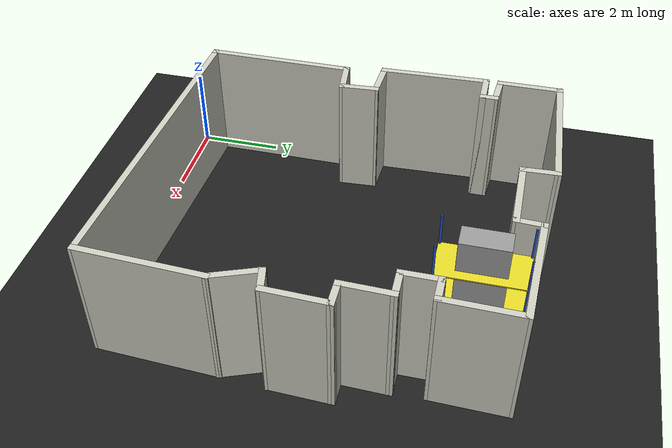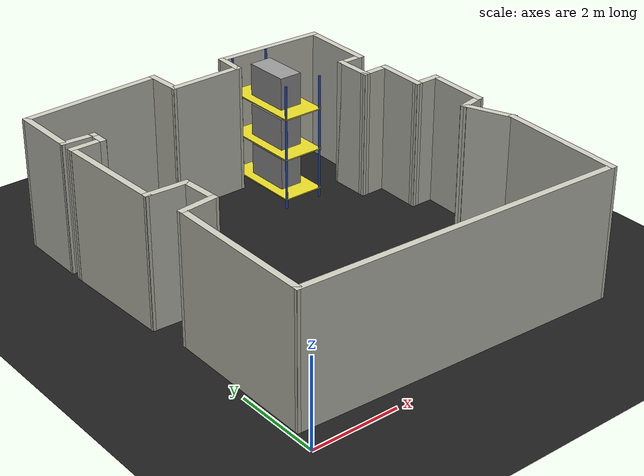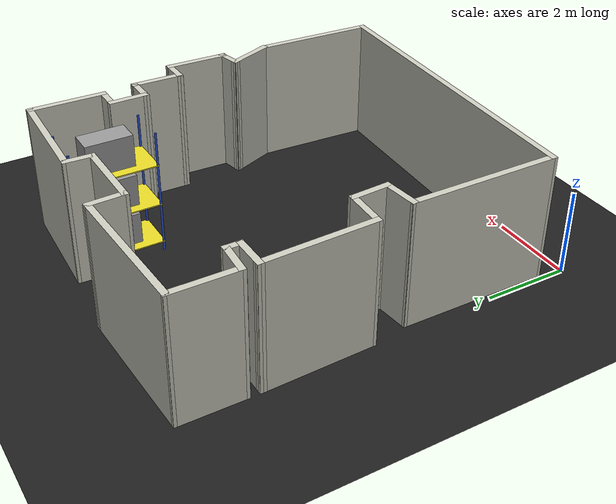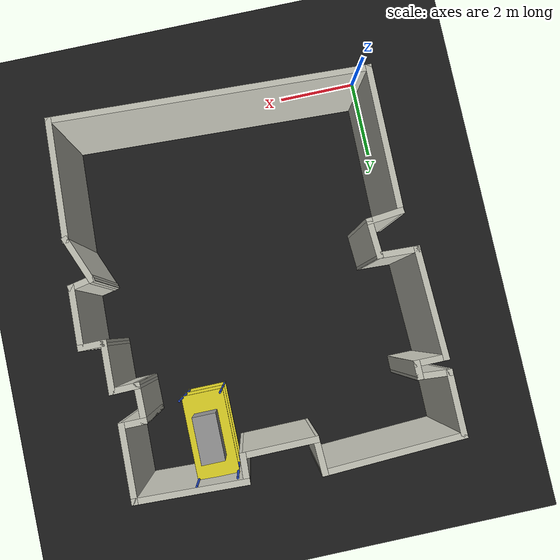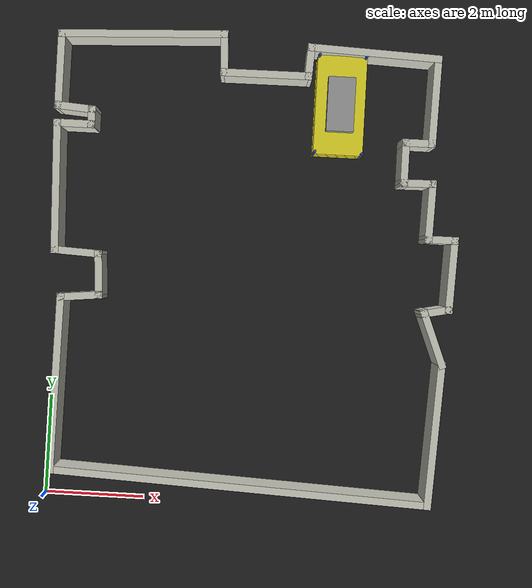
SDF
<sdf version="1.7">
    <world name="default">
        <light name="sun" type="directional">
            <cast_shadows>1</cast_shadows>
            <pose>0 0 10 0 -0 0</pose>
            <diffuse>0.8 0.8 0.8 1</diffuse>
            <specular>0.2 0.2 0.2 1</specular>
            <attenuation>
                <range>1000</range>
                <constant>0.9</constant>
                <linear>0.01</linear>
                <quadratic>0.001</quadratic>
            </attenuation>
            <direction>-0.5 0.1 -0.9</direction>
            <spot>
                <inner_angle>0</inner_angle>
                <outer_angle>0</outer_angle>
                <falloff>0</falloff>
            </spot>
        </light>
        <gravity>0 0 -9.8</gravity>
        <magnetic_field>6e-06 2.3e-05 -4.2e-05</magnetic_field>
        <atmosphere type="adiabatic" />
        <physics type="ode">
            <max_step_size>0.001</max_step_size>
            <real_time_factor>1</real_time_factor>
            <real_time_update_rate>1000</real_time_update_rate>
        </physics>
        <scene>
            <ambient>0.4 0.4 0.4 1</ambient>
            <background>0.7 0.7 0.7 1</background>
            <shadows>1</shadows>
        </scene>
        <wind />
        <spherical_coordinates>
            <surface_model>EARTH_WGS84</surface_model>
            <latitude_deg>0</latitude_deg>
            <longitude_deg>0</longitude_deg>
            <elevation>0</elevation>
            <heading_deg>0</heading_deg>
        </spherical_coordinates>
        <model name="walls-generator">
            <pose>0 0 0 0 -0 0</pose>
            <link name="Wall_11">
                <collision name="Wall_11_Collision">
                    <geometry>
                        <box>
                            <size>3.6101300553591913 0.15 3.5</size>
                            <scale>1 1 1</scale>
                        </box>
                    </geometry>
                    <pose>0 0 1.25 0 -0 0</pose>
                </collision>
                <visual name="Wall_11_Visual">
                    <pose>0 0 1.25 0 -0 0</pose>
                    <geometry>
                        <box>
                            <size>3.6101300553591913 0.15 3.5</size>
                        </box>
                        <scale>1 1 1</scale>
                    </geometry>
                    <material>
                        <script>
                            <uri>file://media/materials/scripts/gazebo.material</uri>
                            <name>Gazebo/PaintedWall</name>
                        </script>
                        <ambient>1 1 1 1</ambient>
                    </material>
                    <meta>
                        <layer>0</layer>
                    </meta>
                </visual>
                <pose>0.195 2.3400000000000003 0 0 0 1.5621260238311112</pose>
            </link>
            <link name="Wall_12">
                <collision name="Wall_12_Collision">
                    <geometry>
                        <box>
                            <size>0.914198926981712 0.15 3.5</size>
                            <scale>1 1 1</scale>
                        </box>
                    </geometry>
                    <pose>0 0 1.25 0 -0 0</pose>
                </collision>
                <visual name="Wall_12_Visual">
                    <pose>0 0 1.25 0 -0 0</pose>
                    <geometry>
                        <box>
                            <size>0.914198926981712 0.15 3.5</size>
                        </box>
                        <scale>1 1 1</scale>
                    </geometry>
                    <material>
                        <script>
                            <uri>file://media/materials/scripts/gazebo.material</uri>
                            <name>Gazebo/PaintedWall</name>
                        </script>
                        <ambient>1 1 1 1</ambient>
                    </material>
                    <meta>
                        <layer>0</layer>
                    </meta>
                </visual>
                <pose>0.59 4.11 0 0 0 0.10487693873023399</pose>
            </link>
            <link name="Wall_13">
                <collision name="Wall_13_Collision">
                    <geometry>
                        <box>
                            <size>0.9715229759416343 0.15 3.5</size>
                            <scale>1 1 1</scale>
                        </box>
                    </geometry>
                    <pose>0 0 1.25 0 -0 0</pose>
                </collision>
                <visual name="Wall_13_Visual">
                    <pose>0 0 1.25 0 -0 0</pose>
                    <geometry>
                        <box>
                            <size>0.9715229759416343 0.15 3.5</size>
                        </box>
                        <scale>1 1 1</scale>
                    </geometry>
                    <material>
                        <script>
                            <uri>file://media/materials/scripts/gazebo.material</uri>
                            <name>Gazebo/PaintedWall</name>
                        </script>
                        <ambient>1 1 1 1</ambient>
                    </material>
                    <meta>
                        <layer>0</layer>
                    </meta>
                </visual>
                <pose>0.9450000000000001 4.5600000000000005 0 0 0 1.6316965350728847</pose>
            </link>
            <link name="Wall_14">
                <collision name="Wall_14_Collision">
                    <geometry>
                        <box>
                            <size>1.0309086218218095 0.15 3.5</size>
                            <scale>1 1 1</scale>
                        </box>
                    </geometry>
                    <pose>0 0 1.25 0 -0 0</pose>
                </collision>
                <visual name="Wall_14_Visual">
                    <pose>0 0 1.25 0 -0 0</pose>
                    <geometry>
                        <box>
                            <size>1.0309086218218095 0.15 3.5</size>
                        </box>
                        <scale>1 1 1</scale>
                    </geometry>
                    <material>
                        <script>
                            <uri>file://media/materials/scripts/gazebo.material</uri>
                            <name>Gazebo/PaintedWall</name>
                        </script>
                        <ambient>1 1 1 1</ambient>
                    </material>
                    <meta>
                        <layer>0</layer>
                    </meta>
                </visual>
                <pose>0.48000000000000004 4.99 0 0 0 3.096169374168216</pose>
            </link>
            <link name="Wall_15">
                <collision name="Wall_15_Collision">
                    <geometry>
                        <box>
                            <size>2.6912595302329905 0.15 3.5</size>
                            <scale>1 1 1</scale>
                        </box>
                    </geometry>
                    <pose>0 0 1.25 0 -0 0</pose>
                </collision>
                <visual name="Wall_15_Visual">
                    <pose>0 0 1.25 0 -0 0</pose>
                    <geometry>
                        <box>
                            <size>2.6912595302329905 0.15 3.5</size>
                        </box>
                        <scale>1 1 1</scale>
                    </geometry>
                    <material>
                        <script>
                            <uri>file://media/materials/scripts/gazebo.material</uri>
                            <name>Gazebo/PaintedWall</name>
                        </script>
                        <ambient>1 1 1 1</ambient>
                    </material>
                    <meta>
                        <layer>0</layer>
                    </meta>
                </visual>
                <pose>0 6.279999999999999 0 0 0 1.6022819812624947</pose>
            </link>
            <link name="Wall_16">
                <collision name="Wall_16_Collision">
                    <geometry>
                        <box>
                            <size>0.8300000000000001 0.15 3.5</size>
                            <scale>1 1 1</scale>
                        </box>
                    </geometry>
                    <pose>0 0 1.25 0 -0 0</pose>
                </collision>
                <visual name="Wall_16_Visual">
                    <pose>0 0 1.25 0 -0 0</pose>
                    <geometry>
                        <box>
                            <size>0.8300000000000001 0.15 3.5</size>
                        </box>
                        <scale>1 1 1</scale>
                    </geometry>
                    <material>
                        <script>
                            <uri>file://media/materials/scripts/gazebo.material</uri>
                            <name>Gazebo/PaintedWall</name>
                        </script>
                        <ambient>1 1 1 1</ambient>
                    </material>
                    <meta>
                        <layer>0</layer>
                    </meta>
                </visual>
                <pose>0.3 7.55 0 0 0 0</pose>
            </link>
            <link name="Wall_17">
                <collision name="Wall_17_Collision">
                    <geometry>
                        <box>
                            <size>0.45000000000000073 0.15 3.5</size>
                            <scale>1 1 1</scale>
                        </box>
                    </geometry>
                    <pose>0 0 1.25 0 -0 0</pose>
                </collision>
                <visual name="Wall_17_Visual">
                    <pose>0 0 1.25 0 -0 0</pose>
                    <geometry>
                        <box>
                            <size>0.45000000000000073 0.15 3.5</size>
                        </box>
                        <scale>1 1 1</scale>
                    </geometry>
                    <material>
                        <script>
                            <uri>file://media/materials/scripts/gazebo.material</uri>
                            <name>Gazebo/PaintedWall</name>
                        </script>
                        <ambient>1 1 1 1</ambient>
                    </material>
                    <meta>
                        <layer>0</layer>
                    </meta>
                </visual>
                <pose>0.64 7.7 0 0 0 1.5707963267948966</pose>
            </link>
            <link name="Wall_18">
                <collision name="Wall_18_Collision">
                    <geometry>
                        <box>
                            <size>0.8318357573492315 0.15 3.5</size>
                            <scale>1 1 1</scale>
                        </box>
                    </geometry>
                    <pose>0 0 1.25 0 -0 0</pose>
                </collision>
                <visual name="Wall_18_Visual">
                    <pose>0 0 1.25 0 -0 0</pose>
                    <geometry>
                        <box>
                            <size>0.8318357573492315 0.15 3.5</size>
                        </box>
                        <scale>1 1 1</scale>
                    </geometry>
                    <material>
                        <script>
                            <uri>file://media/materials/scripts/gazebo.material</uri>
                            <name>Gazebo/PaintedWall</name>
                        </script>
                        <ambient>1 1 1 1</ambient>
                    </material>
                    <meta>
                        <layer>0</layer>
                    </meta>
                </visual>
                <pose>0.3 7.875 0 0 0 3.0681953276881817</pose>
            </link>
            <link name="Wall_19">
                <collision name="Wall_19_Collision">
                    <geometry>
                        <box>
                            <size>1.5899999999999994 0.15 3.5</size>
                            <scale>1 1 1</scale>
                        </box>
                    </geometry>
                    <pose>0 0 1.25 0 -0 0</pose>
                </collision>
                <visual name="Wall_19_Visual">
                    <pose>0 0 1.25 0 -0 0</pose>
                    <geometry>
                        <box>
                            <size>1.5899999999999994 0.15 3.5</size>
                        </box>
                        <scale>1 1 1</scale>
                    </geometry>
                    <material>
                        <script>
                            <uri>file://media/materials/scripts/gazebo.material</uri>
                            <name>Gazebo/PaintedWall</name>
                        </script>
                        <ambient>1 1 1 1</ambient>
                    </material>
                    <meta>
                        <layer>0</layer>
                    </meta>
                </visual>
                <pose>-0.04 8.620000000000001 0 0 0 1.5707963267948966</pose>
            </link>
            <link name="Wall_20">
                <collision name="Wall_20_Collision">
                    <geometry>
                        <box>
                            <size>3.403459696999488 0.15 3.5</size>
                            <scale>1 1 1</scale>
                        </box>
                    </geometry>
                    <pose>0 0 1.25 0 -0 0</pose>
                </collision>
                <visual name="Wall_20_Visual">
                    <pose>0 0 1.25 0 -0 0</pose>
                    <geometry>
                        <box>
                            <size>3.403459696999488 0.15 3.5</size>
                        </box>
                        <scale>1 1 1</scale>
                    </geometry>
                    <material>
                        <script>
                            <uri>file://media/materials/scripts/gazebo.material</uri>
                            <name>Gazebo/PaintedWall</name>
                        </script>
                        <ambient>1 1 1 1</ambient>
                    </material>
                    <meta>
                        <layer>0</layer>
                    </meta>
                </visual>
                <pose>1.585 9.415 0 0 0 0.04612111601451131</pose>
            </link>
            <link name="Wall_21">
                <collision name="Wall_21_Collision">
                    <geometry>
                        <box>
                            <size>0.9105918747922566 0.15 3.5</size>
                            <scale>1 1 1</scale>
                        </box>
                    </geometry>
                    <pose>0 0 1.25 0 -0 0</pose>
                </collision>
                <visual name="Wall_21_Visual">
                    <pose>0 0 1.25 0 -0 0</pose>
                    <geometry>
                        <box>
                            <size>0.9105918747922566 0.15 3.5</size>
                        </box>
                        <scale>1 1 1</scale>
                    </geometry>
                    <material>
                        <script>
                            <uri>file://media/materials/scripts/gazebo.material</uri>
                            <name>Gazebo/PaintedWall</name>
                        </script>
                        <ambient>1 1 1 1</ambient>
                    </material>
                    <meta>
                        <layer>0</layer>
                    </meta>
                </visual>
                <pose>3.225 9.11 0 0 0 -1.5313431256978567</pose>
            </link>
            <link name="Wall_22">
                <collision name="Wall_22_Collision">
                    <geometry>
                        <box>
                            <size>1.8400295855398503 0.15 3.5</size>
                            <scale>1 1 1</scale>
                        </box>
                    </geometry>
                    <pose>0 0 1.25 0 -0 0</pose>
                </collision>
                <visual name="Wall_22_Visual">
                    <pose>0 0 1.25 0 -0 0</pose>
                    <geometry>
                        <box>
                            <size>1.8400295855398503 0.15 3.5</size>
                        </box>
                        <scale>1 1 1</scale>
                    </geometry>
                    <material>
                        <script>
                            <uri>file://media/materials/scripts/gazebo.material</uri>
                            <name>Gazebo/PaintedWall</name>
                        </script>
                        <ambient>1 1 1 1</ambient>
                    </material>
                    <meta>
                        <layer>0</layer>
                    </meta>
                </visual>
                <pose>4.085 8.735 0 0 0 0.005917090706027201</pose>
            </link>
            <link name="Wall_23">
                <collision name="Wall_23_Collision">
                    <geometry>
                        <box>
                            <size>0.7307753438292642 0.15 3.5</size>
                            <scale>1 1 1</scale>
                        </box>
                    </geometry>
                    <pose>0 0 1.25 0 -0 0</pose>
                </collision>
                <visual name="Wall_23_Visual">
                    <pose>0 0 1.25 0 -0 0</pose>
                    <geometry>
                        <box>
                            <size>0.7307753438292642 0.15 3.5</size>
                        </box>
                        <scale>1 1 1</scale>
                    </geometry>
                    <material>
                        <script>
                            <uri>file://media/materials/scripts/gazebo.material</uri>
                            <name>Gazebo/PaintedWall</name>
                        </script>
                        <ambient>1 1 1 1</ambient>
                    </material>
                    <meta>
                        <layer>0</layer>
                    </meta>
                </visual>
                <pose>4.945 9.030000000000001 0 0 0 1.5191182423124663</pose>
            </link>
            <link name="Wall_24">
                <collision name="Wall_24_Collision">
                    <geometry>
                        <box>
                            <size>2.701960031034969 0.15 3.5</size>
                            <scale>1 1 1</scale>
                        </box>
                    </geometry>
                    <pose>0 0 1.25 0 -0 0</pose>
                </collision>
                <visual name="Wall_24_Visual">
                    <pose>0 0 1.25 0 -0 0</pose>
                    <geometry>
                        <box>
                            <size>2.701960031034969 0.15 3.5</size>
                        </box>
                        <scale>1 1 1</scale>
                    </geometry>
                    <material>
                        <script>
                            <uri>file://media/materials/scripts/gazebo.material</uri>
                            <name>Gazebo/PaintedWall</name>
                        </script>
                        <ambient>1 1 1 1</ambient>
                    </material>
                    <meta>
                        <layer>0</layer>
                    </meta>
                </visual>
                <pose>6.234999999999999 9.27 0 0 0 -0.039195601927054576</pose>
            </link>
            <link name="Wall_25">
                <collision name="Wall_25_Collision">
                    <geometry>
                        <box>
                            <size>1.850470523119998 0.15 3.5</size>
                            <scale>1 1 1</scale>
                        </box>
                    </geometry>
                    <pose>0 0 1.25 0 -0 0</pose>
                </collision>
                <visual name="Wall_25_Visual">
                    <pose>0 0 1.25 0 -0 0</pose>
                    <geometry>
                        <box>
                            <size>1.850470523119998 0.15 3.5</size>
                        </box>
                        <scale>1 1 1</scale>
                    </geometry>
                    <material>
                        <script>
                            <uri>file://media/materials/scripts/gazebo.material</uri>
                            <name>Gazebo/PaintedWall</name>
                        </script>
                        <ambient>1 1 1 1</ambient>
                    </material>
                    <meta>
                        <layer>0</layer>
                    </meta>
                </visual>
                <pose>7.49 8.370000000000001 0 0 0 -1.5943213977801136</pose>
            </link>
            <link name="Wall_26">
                <collision name="Wall_26_Collision">
                    <geometry>
                        <box>
                            <size>0.6699999999999996 0.15 3.5</size>
                            <scale>1 1 1</scale>
                        </box>
                    </geometry>
                    <pose>0 0 1.25 0 -0 0</pose>
                </collision>
                <visual name="Wall_26_Visual">
                    <pose>0 0 1.25 0 -0 0</pose>
                    <geometry>
                        <box>
                            <size>0.6699999999999996 0.15 3.5</size>
                        </box>
                        <scale>1 1 1</scale>
                    </geometry>
                    <material>
                        <script>
                            <uri>file://media/materials/scripts/gazebo.material</uri>
                            <name>Gazebo/PaintedWall</name>
                        </script>
                        <ambient>1 1 1 1</ambient>
                    </material>
                    <meta>
                        <layer>0</layer>
                    </meta>
                </visual>
                <pose>7.21 7.5200000000000005 0 0 0 3.141592653589793</pose>
            </link>
            <link name="Wall_27">
                <collision name="Wall_27_Collision">
                    <geometry>
                        <box>
                            <size>0.9600000000000005 0.15 3.5</size>
                            <scale>1 1 1</scale>
                        </box>
                    </geometry>
                    <pose>0 0 1.25 0 -0 0</pose>
                </collision>
                <visual name="Wall_27_Visual">
                    <pose>0 0 1.25 0 -0 0</pose>
                    <geometry>
                        <box>
                            <size>0.9600000000000005 0.15 3.5</size>
                        </box>
                        <scale>1 1 1</scale>
                    </geometry>
                    <material>
                        <script>
                            <uri>file://media/materials/scripts/gazebo.material</uri>
                            <name>Gazebo/PaintedWall</name>
                        </script>
                        <ambient>1 1 1 1</ambient>
                    </material>
                    <meta>
                        <layer>0</layer>
                    </meta>
                </visual>
                <pose>6.95 7.115 0 0 0 -1.5707963267948966</pose>
            </link>
            <link name="Wall_28">
                <collision name="Wall_28_Collision">
                    <geometry>
                        <box>
                            <size>0.7300862004909271 0.15 3.5</size>
                            <scale>1 1 1</scale>
                        </box>
                    </geometry>
                    <pose>0 0 1.25 0 -0 0</pose>
                </collision>
                <visual name="Wall_28_Visual">
                    <pose>0 0 1.25 0 -0 0</pose>
                    <geometry>
                        <box>
                            <size>0.7300862004909271 0.15 3.5</size>
                        </box>
                        <scale>1 1 1</scale>
                    </geometry>
                    <material>
                        <script>
                            <uri>file://media/materials/scripts/gazebo.material</uri>
                            <name>Gazebo/PaintedWall</name>
                        </script>
                        <ambient>1 1 1 1</ambient>
                    </material>
                    <meta>
                        <layer>0</layer>
                    </meta>
                </visual>
                <pose>7.24 6.715 0 0 0 0.017239671194529328</pose>
            </link>
            <link name="Wall_29">
                <collision name="Wall_29_Collision">
                    <geometry>
                        <box>
                            <size>1.2604053313993042 0.15 3.5</size>
                            <scale>1 1 1</scale>
                        </box>
                    </geometry>
                    <pose>0 0 1.25 0 -0 0</pose>
                </collision>
                <visual name="Wall_29_Visual">
                    <pose>0 0 1.25 0 -0 0</pose>
                    <geometry>
                        <box>
                            <size>1.2604053313993042 0.15 3.5</size>
                        </box>
                        <scale>1 1 1</scale>
                    </geometry>
                    <material>
                        <script>
                            <uri>file://media/materials/scripts/gazebo.material</uri>
                            <name>Gazebo/PaintedWall</name>
                        </script>
                        <ambient>1 1 1 1</ambient>
                    </material>
                    <meta>
                        <layer>0</layer>
                    </meta>
                </visual>
                <pose>7.515000000000001 6.165 0 0 0 -1.5978167759821618</pose>
            </link>
            <link name="Wall_30">
                <collision name="Wall_30_Collision">
                    <geometry>
                        <box>
                            <size>0.6799999999999994 0.15 3.5</size>
                            <scale>1 1 1</scale>
                        </box>
                    </geometry>
                    <pose>0 0 1.25 0 -0 0</pose>
                </collision>
                <visual name="Wall_30_Visual">
                    <pose>0 0 1.25 0 -0 0</pose>
                    <geometry>
                        <box>
                            <size>0.6799999999999994 0.15 3.5</size>
                        </box>
                        <scale>1 1 1</scale>
                    </geometry>
                    <material>
                        <script>
                            <uri>file://media/materials/scripts/gazebo.material</uri>
                            <name>Gazebo/PaintedWall</name>
                        </script>
                        <ambient>1 1 1 1</ambient>
                    </material>
                    <meta>
                        <layer>0</layer>
                    </meta>
                </visual>
                <pose>7.765 5.61 0 0 0 0</pose>
            </link>
            <link name="Wall_31">
                <collision name="Wall_31_Collision">
                    <geometry>
                        <box>
                            <size>1.5408989898623124 0.15 3.5</size>
                            <scale>1 1 1</scale>
                        </box>
                    </geometry>
                    <pose>0 0 1.25 0 -0 0</pose>
                </collision>
                <visual name="Wall_31_Visual">
                    <pose>0 0 1.25 0 -0 0</pose>
                    <geometry>
                        <box>
                            <size>1.5408989898623124 0.15 3.5</size>
                        </box>
                        <scale>1 1 1</scale>
                    </geometry>
                    <material>
                        <script>
                            <uri>file://media/materials/scripts/gazebo.material</uri>
                            <name>Gazebo/PaintedWall</name>
                        </script>
                        <ambient>1 1 1 1</ambient>
                    </material>
                    <meta>
                        <layer>0</layer>
                    </meta>
                </visual>
                <pose>8.004999999999999 4.915 0 0 0 -1.6067520471154955</pose>
            </link>
            <link name="Wall_32">
                <collision name="Wall_32_Collision">
                    <geometry>
                        <box>
                            <size>0.6403060268852508 0.15 3.5</size>
                            <scale>1 1 1</scale>
                        </box>
                    </geometry>
                    <pose>0 0 1.25 0 -0 0</pose>
                </collision>
                <visual name="Wall_32_Visual">
                    <pose>0 0 1.25 0 -0 0</pose>
                    <geometry>
                        <box>
                            <size>0.6403060268852508 0.15 3.5</size>
                        </box>
                        <scale>1 1 1</scale>
                    </geometry>
                    <material>
                        <script>
                            <uri>file://media/materials/scripts/gazebo.material</uri>
                            <name>Gazebo/PaintedWall</name>
                        </script>
                        <ambient>1 1 1 1</ambient>
                    </material>
                    <meta>
                        <layer>0</layer>
                    </meta>
                </visual>
                <pose>7.74 4.17 0 0 0 -2.9361972644000267</pose>
            </link>
            <link name="Wall_33">
                <collision name="Wall_33_Collision">
                    <geometry>
                        <box>
                            <size>1.236324076875773 0.15 3.5</size>
                            <scale>1 1 1</scale>
                        </box>
                    </geometry>
                    <pose>0 0 1.25 0 -0 0</pose>
                </collision>
                <visual name="Wall_33_Visual">
                    <pose>0 0 1.25 0 -0 0</pose>
                    <geometry>
                        <box>
                            <size>1.236324076875773 0.15 3.5</size>
                        </box>
                        <scale>1 1 1</scale>
                    </geometry>
                    <material>
                        <script>
                            <uri>file://media/materials/scripts/gazebo.material</uri>
                            <name>Gazebo/PaintedWall</name>
                        </script>
                        <ambient>1 1 1 1</ambient>
                    </material>
                    <meta>
                        <layer>0</layer>
                    </meta>
                </visual>
                <pose>7.7 3.615 0 0 0 -1.1937087397815231</pose>
            </link>
            <link name="Wall_34">
                <collision name="Wall_34_Collision">
                    <geometry>
                        <box>
                            <size>2.98346078144731 0.15 3.5</size>
                            <scale>1 1 1</scale>
                        </box>
                    </geometry>
                    <pose>0 0 1.25 0 -0 0</pose>
                </collision>
                <visual name="Wall_34_Visual">
                    <pose>0 0 1.25 0 -0 0</pose>
                    <geometry>
                        <box>
                            <size>2.98346078144731 0.15 3.5</size>
                        </box>
                        <scale>1 1 1</scale>
                    </geometry>
                    <material>
                        <script>
                            <uri>file://media/materials/scripts/gazebo.material</uri>
                            <name>Gazebo/PaintedWall</name>
                        </script>
                        <ambient>1 1 1 1</ambient>
                    </material>
                    <meta>
                        <layer>0</layer>
                    </meta>
                </visual>
                <pose>7.83 1.6949999999999998 0 0 0 -1.6202259950370288</pose>
            </link>
            <link name="Wall_35">
                <collision name="Wall_35_Collision">
                    <geometry>
                        <box>
                            <size>7.737179976776615 0.15 3.5</size>
                            <scale>1 1 1</scale>
                        </box>
                    </geometry>
                    <pose>0 0 1.25 0 -0 0</pose>
                </collision>
                <visual name="Wall_35_Visual">
                    <pose>0 0 1.25 0 -0 0</pose>
                    <geometry>
                        <box>
                            <size>7.737179976776615 0.15 3.5</size>
                        </box>
                        <scale>1 1 1</scale>
                    </geometry>
                    <material>
                        <script>
                            <uri>file://media/materials/scripts/gazebo.material</uri>
                            <name>Gazebo/PaintedWall</name>
                        </script>
                        <ambient>1 1 1 1</ambient>
                    </material>
                    <meta>
                        <layer>0</layer>
                    </meta>
                </visual>
                <pose>3.9699999999999998 0.445 0 0 0 3.098084507382501</pose>
            </link>
            <static>1</static>
        </model>
        <model name="areas-generator">
            <pose>0 0 0 0 -0 0</pose>
            <static>1</static>
        </model>
        <model name="ground_plane">
            <static>1</static>
            <link name="link">
                <collision name="collision">
                    <geometry>
                        <plane>
                            <normal>0 0 1</normal>
                            <size>803 949</size>
                        </plane>
                    </geometry>
                    <surface>
                        <friction>
                            <ode>
                                <mu>100</mu>
                                <mu2>50</mu2>
                            </ode>
                            <torsional>
                                <ode />
                            </torsional>
                        </friction>
                        <contact>
                            <ode />
                        </contact>
                        <bounce />
                    </surface>
                    <max_contacts>10</max_contacts>
                </collision>
                <visual name="visual">
                    <cast_shadows>0</cast_shadows>
                    <geometry>
                        <plane>
                            <normal>0 0 1</normal>
                            <size>803 949</size>
                        </plane>
                    </geometry>
                    <material>
                        <script>
                            <uri>file://media/materials/scripts/gazebo.material</uri>
                            <name>Gazebo/FlatBlack</name>
                        </script>
                    </material>
                </visual>
                <self_collide>0</self_collide>
                <enable_wind>0</enable_wind>
                <kinematic>0</kinematic>
            </link>
        </model>
        <model name="shelf-arendai-WxLxH-0.6188247540256866">
            <link name="pole-A-0.6662954007945359">
                <pose>-0.47000000000000003 0.97 1.5 0 -0 0</pose>
                <visual name="visual">
                    <pose>0 0 0 0 -0 0</pose>
                    <geometry>
                        <cylinder>
                            <radius>0.0261132</radius>
                            <length>3</length>
                        </cylinder>
                    </geometry>
                    <material>
                        <lighting>1</lighting>
                        <script>
                            <uri>file://media/materials/scripts/gazebo.material</uri>
                            <name>Gazebo/Blue</name>
                        </script>
                        <shader type="pixel" />
                    </material>
                    <transparency>0</transparency>
                    <cast_shadows>1</cast_shadows>
                </visual>
                <collision name="collision">
                    <laser_retro>0</laser_retro>
                    <max_contacts>10</max_contacts>
                    <pose>0 0 0 0 -0 0</pose>
                    <geometry>
                        <cylinder>
                            <radius>0.026113</radius>
                            <length>1.58813</length>
                        </cylinder>
                    </geometry>
                </collision>
                <self_collide>0</self_collide>
                <enable_wind>0</enable_wind>
                <kinematic>0</kinematic>
            </link>
            <link name="pole-B-0.9795990950624578">
                <pose>0.47000000000000003 0.97 1.5 0 -0 0</pose>
                <visual name="visual">
                    <pose>0 0 0 0 -0 0</pose>
                    <geometry>
                        <cylinder>
                            <radius>0.0261132</radius>
                            <length>3</length>
                        </cylinder>
                    </geometry>
                    <material>
                        <lighting>1</lighting>
                        <script>
                            <uri>file://media/materials/scripts/gazebo.material</uri>
                            <name>Gazebo/Blue</name>
                        </script>
                        <shader type="pixel" />
                    </material>
                    <transparency>0</transparency>
                    <cast_shadows>1</cast_shadows>
                </visual>
                <collision name="collision">
                    <laser_retro>0</laser_retro>
                    <max_contacts>10</max_contacts>
                    <pose>0 0 0 0 -0 0</pose>
                    <geometry>
                        <cylinder>
                            <radius>0.026113</radius>
                            <length>1.58813</length>
                        </cylinder>
                    </geometry>
                </collision>
                <self_collide>0</self_collide>
                <enable_wind>0</enable_wind>
                <kinematic>0</kinematic>
            </link>
            <link name="pole-C-0.6109568831504346">
                <pose>0.47000000000000003 -0.97 1.5 0 -0 0</pose>
                <visual name="visual">
                    <pose>0 0 0 0 -0 0</pose>
                    <geometry>
                        <cylinder>
                            <radius>0.0261132</radius>
                            <length>3</length>
                        </cylinder>
                    </geometry>
                    <material>
                        <lighting>1</lighting>
                        <script>
                            <uri>file://media/materials/scripts/gazebo.material</uri>
                            <name>Gazebo/Blue</name>
                        </script>
                        <shader type="pixel" />
                    </material>
                    <transparency>0</transparency>
                    <cast_shadows>1</cast_shadows>
                </visual>
                <collision name="collision">
                    <laser_retro>0</laser_retro>
                    <max_contacts>10</max_contacts>
                    <pose>0 0 0 0 -0 0</pose>
                    <geometry>
                        <cylinder>
                            <radius>0.026113</radius>
                            <length>1.58813</length>
                        </cylinder>
                    </geometry>
                </collision>
                <self_collide>0</self_collide>
                <enable_wind>0</enable_wind>
                <kinematic>0</kinematic>
            </link>
            <link name="pole-D-0.6641753672883859">
                <pose>-0.47000000000000003 -0.97 1.5 0 -0 0</pose>
                <visual name="visual">
                    <pose>0 0 0 0 -0 0</pose>
                    <geometry>
                        <cylinder>
                            <radius>0.0261132</radius>
                            <length>3</length>
                        </cylinder>
                    </geometry>
                    <material>
                        <lighting>1</lighting>
                        <script>
                            <uri>file://media/materials/scripts/gazebo.material</uri>
                            <name>Gazebo/Blue</name>
                        </script>
                        <shader type="pixel" />
                    </material>
                    <transparency>0</transparency>
                    <cast_shadows>1</cast_shadows>
                </visual>
                <collision name="collision">
                    <laser_retro>0</laser_retro>
                    <max_contacts>10</max_contacts>
                    <pose>0 0 0 0 -0 0</pose>
                    <geometry>
                        <cylinder>
                            <radius>0.026113</radius>
                            <length>1.58813</length>
                        </cylinder>
                    </geometry>
                </collision>
                <self_collide>0</self_collide>
                <enable_wind>0</enable_wind>
                <kinematic>0</kinematic>
            </link>
            <link name="shelf-WxL-0">
                <pose>0 0 0.227407 0 -0 0</pose>
                <visual name="visual">
                    <pose>0 0 0 0 -0 0</pose>
                    <geometry>
                        <box>
                            <size>1 2 0.027407</size>
                        </box>
                    </geometry>
                    <material>
                        <lighting>1</lighting>
                        <script>
                            <uri>file://media/materials/scripts/gazebo.material</uri>
                            <name>Gazebo/Yellow</name>
                        </script>
                        <shader type="pixel" />
                    </material>
                    <transparency>0</transparency>
                    <cast_shadows>1</cast_shadows>
                </visual>
                <collision name="collision">
                    <laser_retro>0</laser_retro>
                    <max_contacts>10</max_contacts>
                    <pose>0 0 1.272593 0 -0 0</pose>
                    <geometry>
                        <box>
                            <size>1 2 3</size>
                        </box>
                    </geometry>
                </collision>
                <self_collide>0</self_collide>
                <enable_wind>0</enable_wind>
                <kinematic>0</kinematic>
            </link>
            <link name="shelf-WxL-1">
                <pose>0 0 1.217407 0 -0 0</pose>
                <visual name="visual">
                    <pose>0 0 0 0 -0 0</pose>
                    <geometry>
                        <box>
                            <size>1 2 0.027407</size>
                        </box>
                    </geometry>
                    <material>
                        <lighting>1</lighting>
                        <script>
                            <uri>file://media/materials/scripts/gazebo.material</uri>
                            <name>Gazebo/Yellow</name>
                        </script>
                        <shader type="pixel" />
                    </material>
                    <transparency>0</transparency>
                    <cast_shadows>1</cast_shadows>
                </visual>
                <collision name="collision">
                    <laser_retro>0</laser_retro>
                    <max_contacts>10</max_contacts>
                    <pose>0 0 0 0 -0 0</pose>
                    <geometry>
                        <box>
                            <size>1 2 0.027407</size>
                        </box>
                    </geometry>
                </collision>
                <self_collide>0</self_collide>
                <enable_wind>0</enable_wind>
                <kinematic>0</kinematic>
            </link>
            <link name="shelf-WxL-2">
                <pose>0 0 2.207407 0 -0 0</pose>
                <visual name="visual">
                    <pose>0 0 0 0 -0 0</pose>
                    <geometry>
                        <box>
                            <size>1 2 0.027407</size>
                        </box>
                    </geometry>
                    <material>
                        <lighting>1</lighting>
                        <script>
                            <uri>file://media/materials/scripts/gazebo.material</uri>
                            <name>Gazebo/Yellow</name>
                        </script>
                        <shader type="pixel" />
                    </material>
                    <transparency>0</transparency>
                    <cast_shadows>1</cast_shadows>
                </visual>
                <collision name="collision">
                    <laser_retro>0</laser_retro>
                    <max_contacts>10</max_contacts>
                    <pose>0 0 0 0 -0 0</pose>
                    <geometry>
                        <box>
                            <size>1 2 0.027407</size>
                        </box>
                    </geometry>
                </collision>
                <self_collide>0</self_collide>
                <enable_wind>0</enable_wind>
                <kinematic>0</kinematic>
            </link>
            <link name="box-WxL-0">
                <pose>0 0 0.612407 0 -0 0</pose>
                <visual name="visual">
                    <pose>0 0 0 0 -0 0</pose>
                    <geometry>
                        <box>
                            <size>0.55 1.09 0.77</size>
                        </box>
                    </geometry>
                    <material>
                        <lighting>1</lighting>
                        <script>
                            <uri>file://media/materials/scripts/gazebo.material</uri>
                            <name>Gazebo/Grey</name>
                        </script>
                        <shader type="pixel" />
                    </material>
                    <transparency>0</transparency>
                    <cast_shadows>1</cast_shadows>
                </visual>
                <collision name="collision">
                    <laser_retro>0</laser_retro>
                    <max_contacts>10</max_contacts>
                    <pose>0 0 0 0 -0 0</pose>
                    <geometry>
                        <box>
                            <size>0.55 1.09 0.77</size>
                        </box>
                    </geometry>
                </collision>
                <self_collide>0</self_collide>
                <enable_wind>0</enable_wind>
                <kinematic>0</kinematic>
            </link>
            <link name="box-WxL-1">
                <pose>0 0 1.602407 0 -0 0</pose>
                <visual name="visual">
                    <pose>0 0 0 0 -0 0</pose>
                    <geometry>
                        <box>
                            <size>0.55 1.09 0.77</size>
                        </box>
                    </geometry>
                    <material>
                        <lighting>1</lighting>
                        <script>
                            <uri>file://media/materials/scripts/gazebo.material</uri>
                            <name>Gazebo/Grey</name>
                        </script>
                        <shader type="pixel" />
                    </material>
                    <transparency>0</transparency>
                    <cast_shadows>1</cast_shadows>
                </visual>
                <collision name="collision">
                    <laser_retro>0</laser_retro>
                    <max_contacts>10</max_contacts>
                    <pose>0 0 0 0 -0 0</pose>
                    <geometry>
                        <box>
                            <size>0.55 1.09 0.77</size>
                        </box>
                    </geometry>
                </collision>
                <self_collide>0</self_collide>
                <enable_wind>0</enable_wind>
                <kinematic>0</kinematic>
            </link>
            <link name="box-WxL-2">
                <pose>0 0 2.592407 0 -0 0</pose>
                <visual name="visual">
                    <pose>0 0 0 0 -0 0</pose>
                    <geometry>
                        <box>
                            <size>0.55 1.09 0.77</size>
                        </box>
                    </geometry>
                    <material>
                        <lighting>1</lighting>
                        <script>
                            <uri>file://media/materials/scripts/gazebo.material</uri>
                            <name>Gazebo/Grey</name>
                        </script>
                        <shader type="pixel" />
                    </material>
                    <transparency>0</transparency>
                    <cast_shadows>1</cast_shadows>
                </visual>
                <collision name="collision">
                    <laser_retro>0</laser_retro>
                    <max_contacts>10</max_contacts>
                    <pose>0 0 0 0 -0 0</pose>
                    <geometry>
                        <box>
                            <size>0.55 1.09 0.77</size>
                        </box>
                    </geometry>
                </collision>
                <self_collide>0</self_collide>
                <enable_wind>0</enable_wind>
                <kinematic>0</kinematic>
            </link>
            <static>1</static>
            <allow_auto_disable>1</allow_auto_disable>
            <pose>5.61 8.22 0 0 0 0</pose>
        </model>
    </world>
</sdf>
